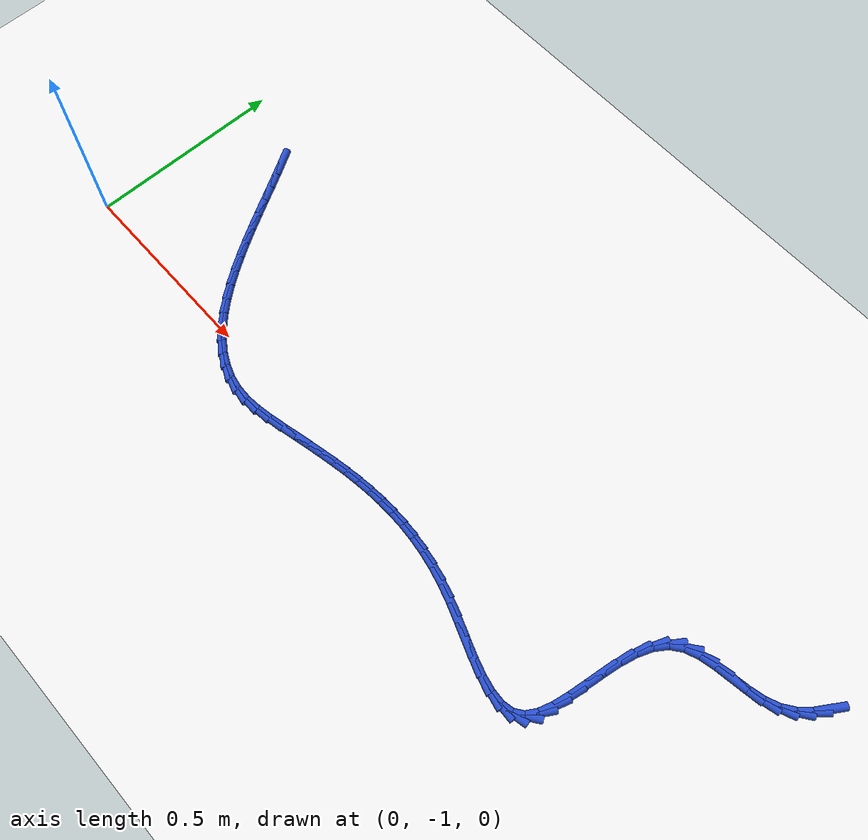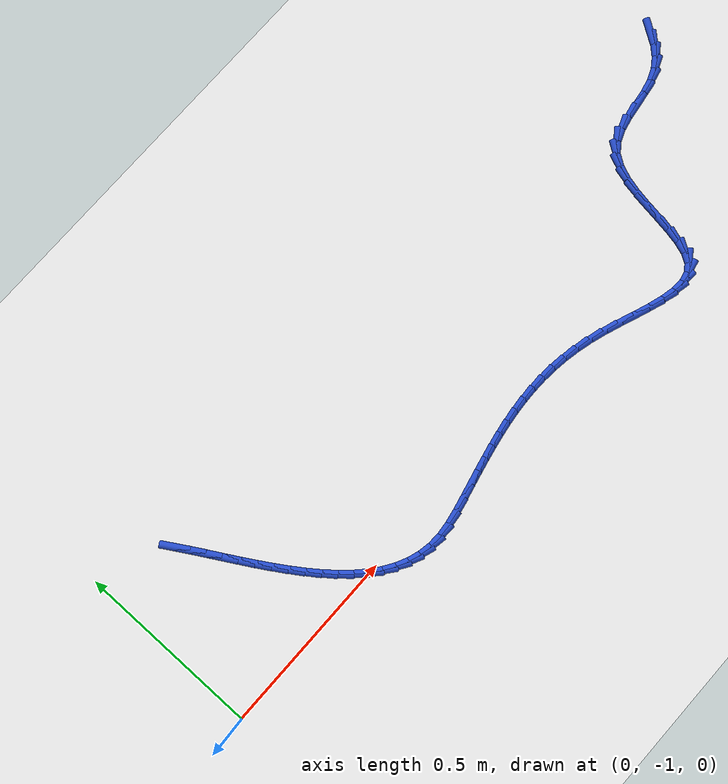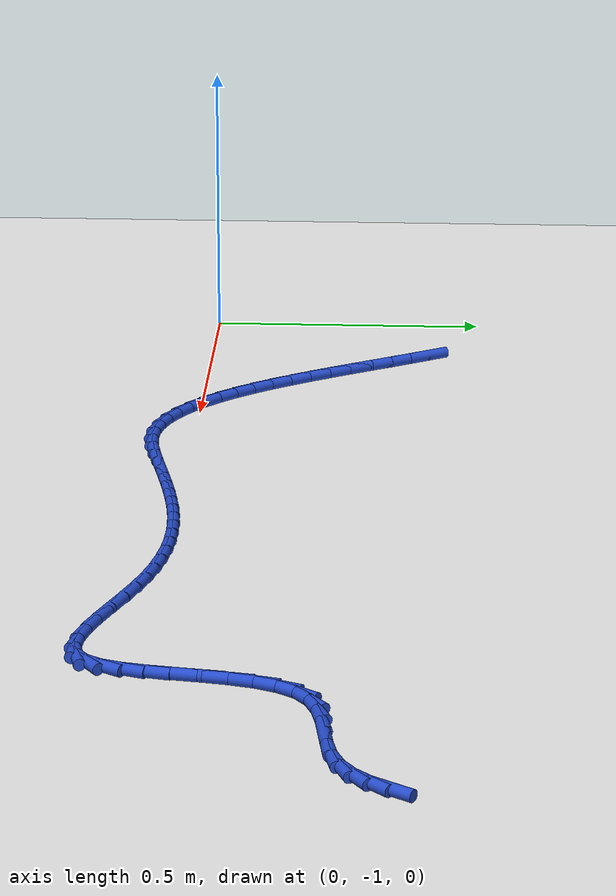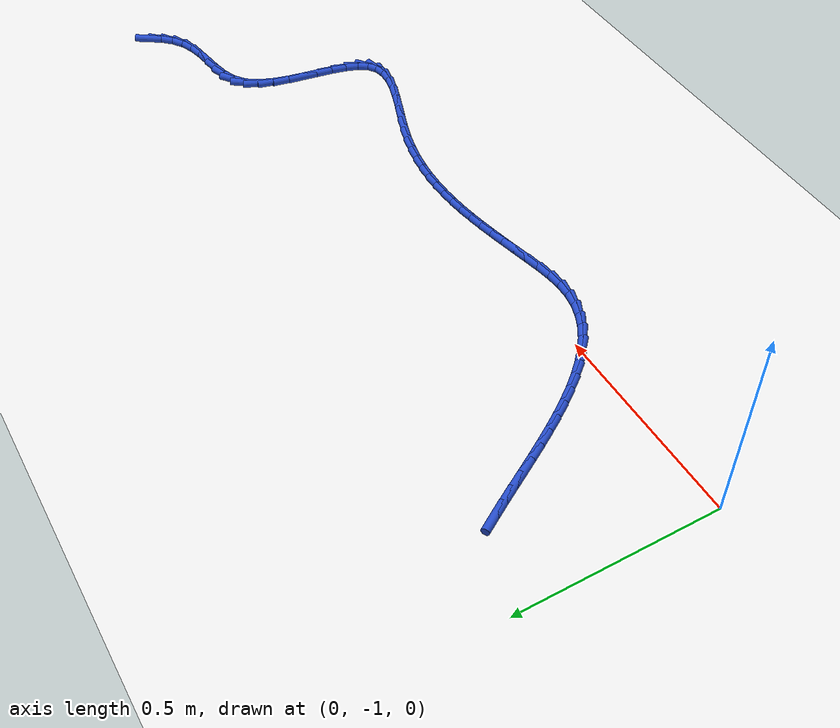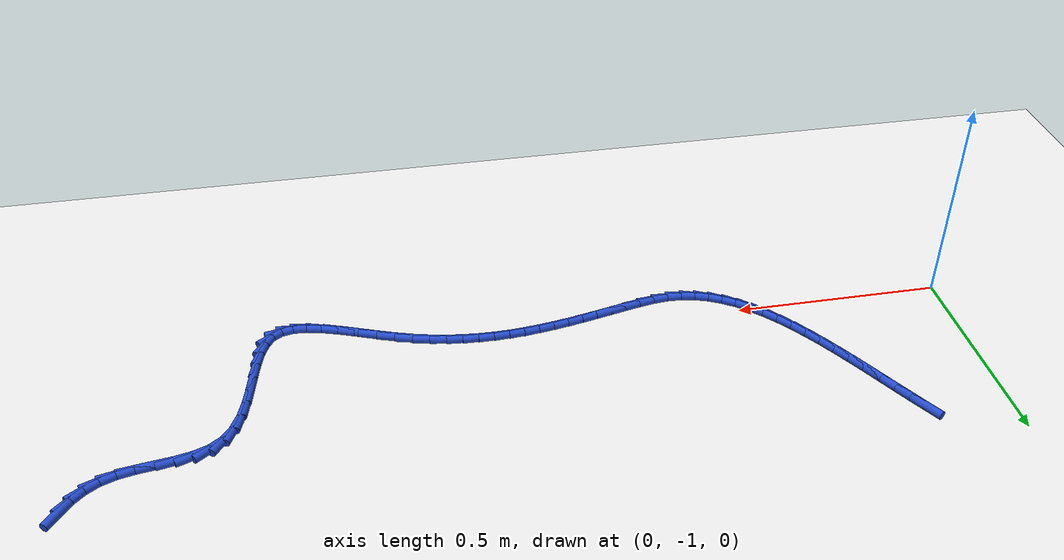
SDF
<sdf version="1.6">
 <world name="default">
  <model name="ground_plane">
   <static>1</static>
   <link name="link">
    <collision name="collision">
     <geometry><plane><normal>0 0 1</normal><size>100 100</size></plane></geometry>
     <surface><friction><ode><mu>100</mu><mu2>50</mu2></ode></friction></surface>
    </collision>
    <visual name="visual">
     <cast_shadows>0</cast_shadows>
     <geometry><plane><normal>0 0 1</normal><size>100 100</size></plane></geometry>
     <material>
      <script><uri>file://media/materials/scripts/gazebo.material</uri><name>Gazebo/WhiteGlow</name></script>
     </material>
    </visual>
   </link>
  </model>
  <model name="line">
   <link name="link_110">
    <pose>2.0328197252853224 -0.6111592553839951 0.01 0 1.57 0.9902306404199421</pose>
    <collision name="collision">
     <geometry><cylinder><radius>0.01</radius><length>0.08</length></cylinder></geometry>
    </collision>
    <visual name="visual">
     <material>
      <script><name>Gazebo/Blue</name><uri>file://media/materials/scripts/gazebo.material</uri></script>
     </material>
     <geometry><cylinder><radius>0.01</radius><length>0.08</length></cylinder></geometry>
    </visual>
   </link>
   <link name="link_111">
    <pose>2.013456926080141 -0.6406767410957672 0.01 0 1.57 0.8161547421102955</pose>
    <collision name="collision">
     <geometry><cylinder><radius>0.01</radius><length>0.08</length></cylinder></geometry>
    </collision>
    <visual name="visual">
     <material>
      <script><name>Gazebo/Blue</name><uri>file://media/materials/scripts/gazebo.material</uri></script>
     </material>
     <geometry><cylinder><radius>0.01</radius><length>0.08</length></cylinder></geometry>
    </visual>
   </link>
   <link name="link_112">
    <pose>1.9900759665988266 -0.6655420590887993 0.01 0 1.57 0.6112546225819424</pose>
    <collision name="collision">
     <geometry><cylinder><radius>0.01</radius><length>0.08</length></cylinder></geometry>
    </collision>
    <visual name="visual">
     <material>
      <script><name>Gazebo/Blue</name><uri>file://media/materials/scripts/gazebo.material</uri></script>
     </material>
     <geometry><cylinder><radius>0.01</radius><length>0.08</length></cylinder></geometry>
    </visual>
   </link>
   <link name="link_113">
    <pose>1.9622077225507595 -0.6850717898865568 0.01 0 1.57 0.3922026738756351</pose>
    <collision name="collision">
     <geometry><cylinder><radius>0.01</radius><length>0.08</length></cylinder></geometry>
    </collision>
    <visual name="visual">
     <material>
      <script><name>Gazebo/Blue</name><uri>file://media/materials/scripts/gazebo.material</uri></script>
     </material>
     <geometry><cylinder><radius>0.01</radius><length>0.08</length></cylinder></geometry>
    </visual>
   </link>
   <link name="link_114">
    <pose>1.929422585102428 -0.6986327752673888 0.01 0 1.57 0.2238521090580641</pose>
    <collision name="collision">
     <geometry><cylinder><radius>0.01</radius><length>0.08</length></cylinder></geometry>
    </collision>
    <visual name="visual">
     <material>
      <script><name>Gazebo/Blue</name><uri>file://media/materials/scripts/gazebo.material</uri></script>
     </material>
     <geometry><cylinder><radius>0.01</radius><length>0.08</length></cylinder></geometry>
    </visual>
   </link>
   <link name="link_115">
    <pose>1.8924394195858414 -0.7070526462042628 0.01 0 1.57 0.14602534372047485</pose>
    <collision name="collision">
     <geometry><cylinder><radius>0.01</radius><length>0.08</length></cylinder></geometry>
    </collision>
    <visual name="visual">
     <material>
      <script><name>Gazebo/Blue</name><uri>file://media/materials/scripts/gazebo.material</uri></script>
     </material>
     <geometry><cylinder><radius>0.01</radius><length>0.08</length></cylinder></geometry>
    </visual>
   </link>
   <link name="link_116">
    <pose>1.8532769371329352 -0.7128123583649497 0.01 0 1.57 0.14344134991112764</pose>
    <collision name="collision">
     <geometry><cylinder><radius>0.01</radius><length>0.08</length></cylinder></geometry>
    </collision>
    <visual name="visual">
     <material>
      <script><name>Gazebo/Blue</name><uri>file://media/materials/scripts/gazebo.material</uri></script>
     </material>
     <geometry><cylinder><radius>0.01</radius><length>0.08</length></cylinder></geometry>
    </visual>
   </link>
   <link name="link_117">
    <pose>1.814023784214208 -0.7184818209087009 0.01 0 1.57 0.2153462271272409</pose>
    <collision name="collision">
     <geometry><cylinder><radius>0.01</radius><length>0.08</length></cylinder></geometry>
    </collision>
    <visual name="visual">
     <material>
      <script><name>Gazebo/Blue</name><uri>file://media/materials/scripts/gazebo.material</uri></script>
     </material>
     <geometry><cylinder><radius>0.01</radius><length>0.08</length></cylinder></geometry>
    </visual>
   </link>
   <link name="link_118">
    <pose>1.7767686073001612 -0.7266309429947663 0.01 0 1.57 0.37871874551312384</pose>
    <collision name="collision">
     <geometry><cylinder><radius>0.01</radius><length>0.08</length></cylinder></geometry>
    </collision>
    <visual name="visual">
     <material>
      <script><name>Gazebo/Blue</name><uri>file://media/materials/scripts/gazebo.material</uri></script>
     </material>
     <geometry><cylinder><radius>0.01</radius><length>0.08</length></cylinder></geometry>
    </visual>
   </link>
   <link name="link_119">
    <pose>1.743600052861292 -0.7398296337823967 0.01 0 1.57 0.6557900767113067</pose>
    <collision name="collision">
     <geometry><cylinder><radius>0.01</radius><length>0.08</length></cylinder></geometry>
    </collision>
    <visual name="visual">
     <material>
      <script><name>Gazebo/Blue</name><uri>file://media/materials/scripts/gazebo.material</uri></script>
     </material>
     <geometry><cylinder><radius>0.01</radius><length>0.08</length></cylinder></geometry>
    </visual>
   </link>
   <link name="link_120">
    <pose>1.7165826333702952 -0.7606163262087268 0.01 0 1.57 0.9666829474743387</pose>
    <collision name="collision">
     <geometry><cylinder><radius>0.01</radius><length>0.08</length></cylinder></geometry>
    </collision>
    <visual name="visual">
     <material>
      <script><name>Gazebo/Blue</name><uri>file://media/materials/scripts/gazebo.material</uri></script>
     </material>
     <geometry><cylinder><radius>0.01</radius><length>0.08</length></cylinder></geometry>
    </visual>
   </link>
   <link name="link_121">
    <pose>1.6964471705883504 -0.7897900171916727 0.01 0 1.57 1.1847960602527028</pose>
    <collision name="collision">
     <geometry><cylinder><radius>0.01</radius><length>0.08</length></cylinder></geometry>
    </collision>
    <visual name="visual">
     <material>
      <script><name>Gazebo/Blue</name><uri>file://media/materials/scripts/gazebo.material</uri></script>
     </material>
     <geometry><cylinder><radius>0.01</radius><length>0.08</length></cylinder></geometry>
    </visual>
   </link>
   <link name="link_122">
    <pose>1.6819204655087676 -0.8255360047781958 0.01 0 1.57 1.31918658557293</pose>
    <collision name="collision">
     <geometry><cylinder><radius>0.01</radius><length>0.08</length></cylinder></geometry>
    </collision>
    <visual name="visual">
     <material>
      <script><name>Gazebo/Blue</name><uri>file://media/materials/scripts/gazebo.material</uri></script>
     </material>
     <geometry><cylinder><radius>0.01</radius><length>0.08</length></cylinder></geometry>
    </visual>
   </link>
   <link name="link_123">
    <pose>1.6715641109626231 -0.8658241179971582 0.01 0 1.57 1.3945054377871708</pose>
    <collision name="collision">
     <geometry><cylinder><radius>0.01</radius><length>0.08</length></cylinder></geometry>
    </collision>
    <visual name="visual">
     <material>
      <script><name>Gazebo/Blue</name><uri>file://media/materials/scripts/gazebo.material</uri></script>
     </material>
     <geometry><cylinder><radius>0.01</radius><length>0.08</length></cylinder></geometry>
    </visual>
   </link>
   <link name="link_124">
    <pose>1.6639396997809937 -0.9086241858774222 0.01 0 1.57 1.4255554097595278</pose>
    <collision name="collision">
     <geometry><cylinder><radius>0.01</radius><length>0.08</length></cylinder></geometry>
    </collision>
    <visual name="visual">
     <material>
      <script><name>Gazebo/Blue</name><uri>file://media/materials/scripts/gazebo.material</uri></script>
     </material>
     <geometry><cylinder><radius>0.01</radius><length>0.08</length></cylinder></geometry>
    </visual>
   </link>
   <link name="link_125">
    <pose>1.6576088247949554 -0.9519060374478491 0.01 0 1.57 1.4168548545623476</pose>
    <collision name="collision">
     <geometry><cylinder><radius>0.01</radius><length>0.08</length></cylinder></geometry>
    </collision>
    <visual name="visual">
     <material>
      <script><name>Gazebo/Blue</name><uri>file://media/materials/scripts/gazebo.material</uri></script>
     </material>
     <geometry><cylinder><radius>0.01</radius><length>0.08</length></cylinder></geometry>
    </visual>
   </link>
   <link name="link_126">
    <pose>1.651133078835585 -0.9936395017373029 0.01 0 1.57 1.3626373330327468</pose>
    <collision name="collision">
     <geometry><cylinder><radius>0.01</radius><length>0.08</length></cylinder></geometry>
    </collision>
    <visual name="visual">
     <material>
      <script><name>Gazebo/Blue</name><uri>file://media/materials/scripts/gazebo.material</uri></script>
     </material>
     <geometry><cylinder><radius>0.01</radius><length>0.08</length></cylinder></geometry>
    </visual>
   </link>
   <link name="link_127">
    <pose>1.6430740547339588 -1.031794407774645 0.01 0 1.57 1.2426444958682092</pose>
    <collision name="collision">
     <geometry><cylinder><radius>0.01</radius><length>0.08</length></cylinder></geometry>
    </collision>
    <visual name="visual">
     <material>
      <script><name>Gazebo/Blue</name><uri>file://media/materials/scripts/gazebo.material</uri></script>
     </material>
     <geometry><cylinder><radius>0.01</radius><length>0.08</length></cylinder></geometry>
    </visual>
   </link>
   <link name="link_128">
    <pose>1.631993345321154 -1.0643405845887375 0.01 0 1.57 1.0129551217567745</pose>
    <collision name="collision">
     <geometry><cylinder><radius>0.01</radius><length>0.08</length></cylinder></geometry>
    </collision>
    <visual name="visual">
     <material>
      <script><name>Gazebo/Blue</name><uri>file://media/materials/scripts/gazebo.material</uri></script>
     </material>
     <geometry><cylinder><radius>0.01</radius><length>0.08</length></cylinder></geometry>
    </visual>
   </link>
   <link name="link_129">
    <pose>1.616452543428246 -1.0892478612084424 0.01 0 1.57 0.623672129898998</pose>
    <collision name="collision">
     <geometry><cylinder><radius>0.01</radius><length>0.08</length></cylinder></geometry>
    </collision>
    <visual name="visual">
     <material>
      <script><name>Gazebo/Blue</name><uri>file://media/materials/scripts/gazebo.material</uri></script>
     </material>
     <geometry><cylinder><radius>0.01</radius><length>0.08</length></cylinder></geometry>
    </visual>
   </link>
   <link name="link_130">
    <pose>1.5950955213045763 -1.1046135401017252 0.01 0 1.57 0.21341877784615032</pose>
    <collision name="collision">
     <geometry><cylinder><radius>0.01</radius><length>0.08</length></cylinder></geometry>
    </collision>
    <visual name="visual">
     <material>
      <script><name>Gazebo/Blue</name><uri>file://media/materials/scripts/gazebo.material</uri></script>
     </material>
     <geometry><cylinder><radius>0.01</radius><length>0.08</length></cylinder></geometry>
    </visual>
   </link>
   <link name="link_131">
    <pose>1.5678467202689328 -1.110518877278448 0.01 0 1.57 -0.059126595104994004</pose>
    <collision name="collision">
     <geometry><cylinder><radius>0.01</radius><length>0.08</length></cylinder></geometry>
    </collision>
    <visual name="visual">
     <material>
      <script><name>Gazebo/Blue</name><uri>file://media/materials/scripts/gazebo.material</uri></script>
     </material>
     <geometry><cylinder><radius>0.01</radius><length>0.08</length></cylinder></geometry>
    </visual>
   </link>
   <link name="link_132">
    <pose>1.5356422724163707 -1.108612515894369 0.01 0 1.57 -0.21822308727132422</pose>
    <collision name="collision">
     <geometry><cylinder><radius>0.01</radius><length>0.08</length></cylinder></geometry>
    </collision>
    <visual name="visual">
     <material>
      <script><name>Gazebo/Blue</name><uri>file://media/materials/scripts/gazebo.material</uri></script>
     </material>
     <geometry><cylinder><radius>0.01</radius><length>0.08</length></cylinder></geometry>
    </visual>
   </link>
   <link name="link_133">
    <pose>1.4994458755054776 -1.1005858058963953 0.01 0 1.57 -0.3074771276855908</pose>
    <collision name="collision">
     <geometry><cylinder><radius>0.01</radius><length>0.08</length></cylinder></geometry>
    </collision>
    <visual name="visual">
     <material>
      <script><name>Gazebo/Blue</name><uri>file://media/materials/scripts/gazebo.material</uri></script>
     </material>
     <geometry><cylinder><radius>0.01</radius><length>0.08</length></cylinder></geometry>
    </visual>
   </link>
   <link name="link_134">
    <pose>1.4602212272948432 -1.0881300972314352 0.01 0 1.57 -0.3525968057603776</pose>
    <collision name="collision">
     <geometry><cylinder><radius>0.01</radius><length>0.08</length></cylinder></geometry>
    </collision>
    <visual name="visual">
     <material>
      <script><name>Gazebo/Blue</name><uri>file://media/materials/scripts/gazebo.material</uri></script>
     </material>
     <geometry><cylinder><radius>0.01</radius><length>0.08</length></cylinder></geometry>
    </visual>
   </link>
   <link name="link_135">
    <pose>1.4189320255430555 -1.0729367398463951 0.01 0 1.57 -0.3658535775791108</pose>
    <collision name="collision">
     <geometry><cylinder><radius>0.01</radius><length>0.08</length></cylinder></geometry>
    </collision>
    <visual name="visual">
     <material>
      <script><name>Gazebo/Blue</name><uri>file://media/materials/scripts/gazebo.material</uri></script>
     </material>
     <geometry><cylinder><radius>0.01</radius><length>0.08</length></cylinder></geometry>
    </visual>
   </link>
   <link name="link_136">
    <pose>1.3765419680087032 -1.0566970836881828 0.01 0 1.57 -0.35147158655675903</pose>
    <collision name="collision">
     <geometry><cylinder><radius>0.01</radius><length>0.08</length></cylinder></geometry>
    </collision>
    <visual name="visual">
     <material>
      <script><name>Gazebo/Blue</name><uri>file://media/materials/scripts/gazebo.material</uri></script>
     </material>
     <geometry><cylinder><radius>0.01</radius><length>0.08</length></cylinder></geometry>
    </visual>
   </link>
   <link name="link_137">
    <pose>1.3340147524503754 -1.041102478703706 0.01 0 1.57 -0.30894761933225523</pose>
    <collision name="collision">
     <geometry><cylinder><radius>0.01</radius><length>0.08</length></cylinder></geometry>
    </collision>
    <visual name="visual">
     <material>
      <script><name>Gazebo/Blue</name><uri>file://media/materials/scripts/gazebo.material</uri></script>
     </material>
     <geometry><cylinder><radius>0.01</radius><length>0.08</length></cylinder></geometry>
    </visual>
   </link>
   <link name="link_138">
    <pose>1.2922781857452148 -1.0277815217751511 0.01 0 1.57 -0.2513595650439096</pose>
    <collision name="collision">
     <geometry><cylinder><radius>0.01</radius><length>0.08</length></cylinder></geometry>
    </collision>
    <visual name="visual">
     <material>
      <script><name>Gazebo/Blue</name><uri>file://media/materials/scripts/gazebo.material</uri></script>
     </material>
     <geometry><cylinder><radius>0.01</radius><length>0.08</length></cylinder></geometry>
    </visual>
   </link>
   <link name="link_139">
    <pose>1.2516851649509628 -1.0173576142683802 0.01 0 1.57 -0.19254718010098795</pose>
    <collision name="collision">
     <geometry><cylinder><radius>0.01</radius><length>0.08</length></cylinder></geometry>
    </collision>
    <visual name="visual">
     <material>
      <script><name>Gazebo/Blue</name><uri>file://media/materials/scripts/gazebo.material</uri></script>
     </material>
     <geometry><cylinder><radius>0.01</radius><length>0.08</length></cylinder></geometry>
    </visual>
   </link>
   <link name="link_140">
    <pose>1.2121258119131937 -1.0096450227029978 0.01 0 1.57 -0.1339955106919583</pose>
    <collision name="collision">
     <geometry><cylinder><radius>0.01</radius><length>0.08</length></cylinder></geometry>
    </collision>
    <visual name="visual">
     <material>
      <script><name>Gazebo/Blue</name><uri>file://media/materials/scripts/gazebo.material</uri></script>
     </material>
     <geometry><cylinder><radius>0.01</radius><length>0.08</length></cylinder></geometry>
    </visual>
   </link>
   <link name="link_141">
    <pose>1.173477116002012 -1.0044350522488168 0.01 0 1.57 -0.0768678797705989</pose>
    <collision name="collision">
     <geometry><cylinder><radius>0.01</radius><length>0.08</length></cylinder></geometry>
    </collision>
    <visual name="visual">
     <material>
      <script><name>Gazebo/Blue</name><uri>file://media/materials/scripts/gazebo.material</uri></script>
     </material>
     <geometry><cylinder><radius>0.01</radius><length>0.08</length></cylinder></geometry>
    </visual>
   </link>
   <link name="link_142">
    <pose>1.1356160665875212 -1.0015190080756482 0.01 0 1.57 -0.022332115472428794</pose>
    <collision name="collision">
     <geometry><cylinder><radius>0.01</radius><length>0.08</length></cylinder></geometry>
    </collision>
    <visual name="visual">
     <material>
      <script><name>Gazebo/Blue</name><uri>file://media/materials/scripts/gazebo.material</uri></script>
     </material>
     <geometry><cylinder><radius>0.01</radius><length>0.08</length></cylinder></geometry>
    </visual>
   </link>
   <link name="link_143">
    <pose>1.0984196530398251 -1.000688195353305 0.01 0 1.57 0.02852124862827058</pose>
    <collision name="collision">
     <geometry><cylinder><radius>0.01</radius><length>0.08</length></cylinder></geometry>
    </collision>
    <visual name="visual">
     <material>
      <script><name>Gazebo/Blue</name><uri>file://media/materials/scripts/gazebo.material</uri></script>
     </material>
     <geometry><cylinder><radius>0.01</radius><length>0.08</length></cylinder></geometry>
    </visual>
   </link>
   <link name="link_144">
    <pose>1.0617648647290276 -1.001733919251599 0.01 0 1.57 0.07474603392983466</pose>
    <collision name="collision">
     <geometry><cylinder><radius>0.01</radius><length>0.08</length></cylinder></geometry>
    </collision>
    <visual name="visual">
     <material>
      <script><name>Gazebo/Blue</name><uri>file://media/materials/scripts/gazebo.material</uri></script>
     </material>
     <geometry><cylinder><radius>0.01</radius><length>0.08</length></cylinder></geometry>
    </visual>
   </link>
   <link name="link_145">
    <pose>1.0255286910252328 -1.0044474849403422 0.01 0 1.57 0.11558287646956435</pose>
    <collision name="collision">
     <geometry><cylinder><radius>0.01</radius><length>0.08</length></cylinder></geometry>
    </collision>
    <visual name="visual">
     <material>
      <script><name>Gazebo/Blue</name><uri>file://media/materials/scripts/gazebo.material</uri></script>
     </material>
     <geometry><cylinder><radius>0.01</radius><length>0.08</length></cylinder></geometry>
    </visual>
   </link>
   <link name="link_146">
    <pose>0.9895881212985429 -1.0086201975893465 0.01 0 1.57 0.1504745833168893</pose>
    <collision name="collision">
     <geometry><cylinder><radius>0.01</radius><length>0.08</length></cylinder></geometry>
    </collision>
    <visual name="visual">
     <material>
      <script><name>Gazebo/Blue</name><uri>file://media/materials/scripts/gazebo.material</uri></script>
     </material>
     <geometry><cylinder><radius>0.01</radius><length>0.08</length></cylinder></geometry>
    </visual>
   </link>
   <link name="link_147">
    <pose>0.9538201449190629 -1.0140433623684248 0.01 0 1.57 0.1790584805503404</pose>
    <collision name="collision">
     <geometry><cylinder><radius>0.01</radius><length>0.08</length></cylinder></geometry>
    </collision>
    <visual name="visual">
     <material>
      <script><name>Gazebo/Blue</name><uri>file://media/materials/scripts/gazebo.material</uri></script>
     </material>
     <geometry><cylinder><radius>0.01</radius><length>0.08</length></cylinder></geometry>
    </visual>
   </link>
   <link name="link_148">
    <pose>0.9181017512568959 -1.0205082844473883 0.01 0 1.57 0.20114359376662289</pose>
    <collision name="collision">
     <geometry><cylinder><radius>0.01</radius><length>0.08</length></cylinder></geometry>
    </collision>
    <visual name="visual">
     <material>
      <script><name>Gazebo/Blue</name><uri>file://media/materials/scripts/gazebo.material</uri></script>
     </material>
     <geometry><cylinder><radius>0.01</radius><length>0.08</length></cylinder></geometry>
    </visual>
   </link>
   <link name="link_149">
    <pose>0.882309929682146 -1.0278062689960492 0.01 0 1.57 0.21668109766972743</pose>
    <collision name="collision">
     <geometry><cylinder><radius>0.01</radius><length>0.08</length></cylinder></geometry>
    </collision>
    <visual name="visual">
     <material>
      <script><name>Gazebo/Blue</name><uri>file://media/materials/scripts/gazebo.material</uri></script>
     </material>
     <geometry><cylinder><radius>0.01</radius><length>0.08</length></cylinder></geometry>
    </visual>
   </link>
   <link name="link_150">
    <pose>0.8463216695649168 -1.03572862118422 0.01 0 1.57 0.22573488931792118</pose>
    <collision name="collision">
     <geometry><cylinder><radius>0.01</radius><length>0.08</length></cylinder></geometry>
    </collision>
    <visual name="visual">
     <material>
      <script><name>Gazebo/Blue</name><uri>file://media/materials/scripts/gazebo.material</uri></script>
     </material>
     <geometry><cylinder><radius>0.01</radius><length>0.08</length></cylinder></geometry>
    </visual>
   </link>
   <link name="link_151">
    <pose>0.8100139602753119 -1.044066646181713 0.01 0 1.57 0.22845667853539978</pose>
    <collision name="collision">
     <geometry><cylinder><radius>0.01</radius><length>0.08</length></cylinder></geometry>
    </collision>
    <visual name="visual">
     <material>
      <script><name>Gazebo/Blue</name><uri>file://media/materials/scripts/gazebo.material</uri></script>
     </material>
     <geometry><cylinder><radius>0.01</radius><length>0.08</length></cylinder></geometry>
    </visual>
   </link>
   <link name="link_152">
    <pose>0.7732637911834361 -1.0526116491583395 0.01 0 1.57 0.22095520744331978</pose>
    <collision name="collision">
     <geometry><cylinder><radius>0.01</radius><length>0.08</length></cylinder></geometry>
    </collision>
    <visual name="visual">
     <material>
      <script><name>Gazebo/Blue</name><uri>file://media/materials/scripts/gazebo.material</uri></script>
     </material>
     <geometry><cylinder><radius>0.01</radius><length>0.08</length></cylinder></geometry>
    </visual>
   </link>
   <link name="link_153">
    <pose>0.7360498581351091 -1.0609707399025632 0.01 0 1.57 0.18132951128203767</pose>
    <collision name="collision">
     <geometry><cylinder><radius>0.01</radius><length>0.08</length></cylinder></geometry>
    </collision>
    <visual name="visual">
     <material>
      <script><name>Gazebo/Blue</name><uri>file://media/materials/scripts/gazebo.material</uri></script>
     </material>
     <geometry><cylinder><radius>0.01</radius><length>0.08</length></cylinder></geometry>
    </visual>
   </link>
   <link name="link_154">
    <pose>0.6988843843538513 -1.0677847841352872 0.01 0 1.57 0.0983387197431889</pose>
    <collision name="collision">
     <geometry><cylinder><radius>0.01</radius><length>0.08</length></cylinder></geometry>
    </collision>
    <visual name="visual">
     <material>
      <script><name>Gazebo/Blue</name><uri>file://media/materials/scripts/gazebo.material</uri></script>
     </material>
     <geometry><cylinder><radius>0.01</radius><length>0.08</length></cylinder></geometry>
    </visual>
   </link>
   <link name="link_155">
    <pose>0.6624539378248911 -1.0713789007221395 0.01 0 1.57 -0.03320382352652636</pose>
    <collision name="collision">
     <geometry><cylinder><radius>0.01</radius><length>0.08</length></cylinder></geometry>
    </collision>
    <visual name="visual">
     <material>
      <script><name>Gazebo/Blue</name><uri>file://media/materials/scripts/gazebo.material</uri></script>
     </material>
     <geometry><cylinder><radius>0.01</radius><length>0.08</length></cylinder></geometry>
    </visual>
   </link>
   <link name="link_156">
    <pose>0.6273940838694818 -1.070214351517616 0.01 0 1.57 -0.18329402841155218</pose>
    <collision name="collision">
     <geometry><cylinder><radius>0.01</radius><length>0.08</length></cylinder></geometry>
    </collision>
    <visual name="visual">
     <material>
      <script><name>Gazebo/Blue</name><uri>file://media/materials/scripts/gazebo.material</uri></script>
     </material>
     <geometry><cylinder><radius>0.01</radius><length>0.08</length></cylinder></geometry>
    </visual>
   </link>
   <link name="link_157">
    <pose>0.593872596526536 -1.064000316336317 0.01 0 1.57 -0.327242091873969</pose>
    <collision name="collision">
     <geometry><cylinder><radius>0.01</radius><length>0.08</length></cylinder></geometry>
    </collision>
    <visual name="visual">
     <material>
      <script><name>Gazebo/Blue</name><uri>file://media/materials/scripts/gazebo.material</uri></script>
     </material>
     <geometry><cylinder><radius>0.01</radius><length>0.08</length></cylinder></geometry>
    </visual>
   </link>
   <link name="link_158">
    <pose>0.5618062661707699 -1.0531155193688628 0.01 0 1.57 -0.4589993229955275</pose>
    <collision name="collision">
     <geometry><cylinder><radius>0.01</radius><length>0.08</length></cylinder></geometry>
    </collision>
    <visual name="visual">
     <material>
      <script><name>Gazebo/Blue</name><uri>file://media/materials/scripts/gazebo.material</uri></script>
     </material>
     <geometry><cylinder><radius>0.01</radius><length>0.08</length></cylinder></geometry>
    </visual>
   </link>
   <link name="link_159">
    <pose>0.5311094870915656 -1.0379450767974203 0.01 0 1.57 -0.5752422155111312</pose>
    <collision name="collision">
     <geometry><cylinder><radius>0.01</radius><length>0.08</length></cylinder></geometry>
    </collision>
    <visual name="visual">
     <material>
      <script><name>Gazebo/Blue</name><uri>file://media/materials/scripts/gazebo.material</uri></script>
     </material>
     <geometry><cylinder><radius>0.01</radius><length>0.08</length></cylinder></geometry>
    </visual>
   </link>
   <link name="link_160">
    <pose>0.5016966535783033 -1.018874104804156 0.01 0 1.57 -0.6750605004574942</pose>
    <collision name="collision">
     <geometry><cylinder><radius>0.01</radius><length>0.08</length></cylinder></geometry>
    </collision>
    <visual name="visual">
     <material>
      <script><name>Gazebo/Blue</name><uri>file://media/materials/scripts/gazebo.material</uri></script>
     </material>
     <geometry><cylinder><radius>0.01</radius><length>0.08</length></cylinder></geometry>
    </visual>
   </link>
   <link name="link_161">
    <pose>0.47348215992036596 -0.996287719571237 0.01 0 1.57 -0.7591808079275801</pose>
    <collision name="collision">
     <geometry><cylinder><radius>0.01</radius><length>0.08</length></cylinder></geometry>
    </collision>
    <visual name="visual">
     <material>
      <script><name>Gazebo/Blue</name><uri>file://media/materials/scripts/gazebo.material</uri></script>
     </material>
     <geometry><cylinder><radius>0.01</radius><length>0.08</length></cylinder></geometry>
    </visual>
   </link>
   <link name="link_162">
    <pose>0.4463804004071351 -0.97057103728083 0.01 0 1.57 -0.8291433501137568</pose>
    <collision name="collision">
     <geometry><cylinder><radius>0.01</radius><length>0.08</length></cylinder></geometry>
    </collision>
    <visual name="visual">
     <material>
      <script><name>Gazebo/Blue</name><uri>file://media/materials/scripts/gazebo.material</uri></script>
     </material>
     <geometry><cylinder><radius>0.01</radius><length>0.08</length></cylinder></geometry>
    </visual>
   </link>
   <link name="link_163">
    <pose>0.42030576932799246 -0.9421091741151021 0.01 0 1.57 -0.8867177240352156</pose>
    <collision name="collision">
     <geometry><cylinder><radius>0.01</radius><length>0.08</length></cylinder></geometry>
    </collision>
    <visual name="visual">
     <material>
      <script><name>Gazebo/Blue</name><uri>file://media/materials/scripts/gazebo.material</uri></script>
     </material>
     <geometry><cylinder><radius>0.01</radius><length>0.08</length></cylinder></geometry>
    </visual>
   </link>
   <link name="link_164">
    <pose>0.3951726609723201 -0.9112872462562205 0.01 0 1.57 -0.9335781934657105</pose>
    <collision name="collision">
     <geometry><cylinder><radius>0.01</radius><length>0.08</length></cylinder></geometry>
    </collision>
    <visual name="visual">
     <material>
      <script><name>Gazebo/Blue</name><uri>file://media/materials/scripts/gazebo.material</uri></script>
     </material>
     <geometry><cylinder><radius>0.01</radius><length>0.08</length></cylinder></geometry>
    </visual>
   </link>
   <link name="link_165">
    <pose>0.3708954696294995 -0.8784903698863514 0.01 0 1.57 -0.9711595840676106</pose>
    <collision name="collision">
     <geometry><cylinder><radius>0.01</radius><length>0.08</length></cylinder></geometry>
    </collision>
    <visual name="visual">
     <material>
      <script><name>Gazebo/Blue</name><uri>file://media/materials/scripts/gazebo.material</uri></script>
     </material>
     <geometry><cylinder><radius>0.01</radius><length>0.08</length></cylinder></geometry>
    </visual>
   </link>
   <link name="link_166">
    <pose>0.3473885895889129 -0.8441036611876627 0.01 0 1.57 -1.0006133227431122</pose>
    <collision name="collision">
     <geometry><cylinder><radius>0.01</radius><length>0.08</length></cylinder></geometry>
    </collision>
    <visual name="visual">
     <material>
      <script><name>Gazebo/Blue</name><uri>file://media/materials/scripts/gazebo.material</uri></script>
     </material>
     <geometry><cylinder><radius>0.01</radius><length>0.08</length></cylinder></geometry>
    </visual>
   </link>
   <link name="link_167">
    <pose>0.32456641513994133 -0.8085122363423198 0.01 0 1.57 -1.022809161780365</pose>
    <collision name="collision">
     <geometry><cylinder><radius>0.01</radius><length>0.08</length></cylinder></geometry>
    </collision>
    <visual name="visual">
     <material>
      <script><name>Gazebo/Blue</name><uri>file://media/materials/scripts/gazebo.material</uri></script>
     </material>
     <geometry><cylinder><radius>0.01</radius><length>0.08</length></cylinder></geometry>
    </visual>
   </link>
   <link name="link_168">
    <pose>0.302343340571967 -0.7721012115324905 0.01 0 1.57 -1.0383516872232332</pose>
    <collision name="collision">
     <geometry><cylinder><radius>0.01</radius><length>0.08</length></cylinder></geometry>
    </collision>
    <visual name="visual">
     <material>
      <script><name>Gazebo/Blue</name><uri>file://media/materials/scripts/gazebo.material</uri></script>
     </material>
     <geometry><cylinder><radius>0.01</radius><length>0.08</length></cylinder></geometry>
    </visual>
   </link>
   <link name="link_169">
    <pose>0.28063376017437164 -0.7352557029403417 0.01 0 1.57 -1.047595558912938</pose>
    <collision name="collision">
     <geometry><cylinder><radius>0.01</radius><length>0.08</length></cylinder></geometry>
    </collision>
    <visual name="visual">
     <material>
      <script><name>Gazebo/Blue</name><uri>file://media/materials/scripts/gazebo.material</uri></script>
     </material>
     <geometry><cylinder><radius>0.01</radius><length>0.08</length></cylinder></geometry>
    </visual>
   </link>
   <link name="link_170">
    <pose>0.25935206823653695 -0.6983608267480399 0.01 0 1.57 -1.0506511480499117</pose>
    <collision name="collision">
     <geometry><cylinder><radius>0.01</radius><length>0.08</length></cylinder></geometry>
    </collision>
    <visual name="visual">
     <material>
      <script><name>Gazebo/Blue</name><uri>file://media/materials/scripts/gazebo.material</uri></script>
     </material>
     <geometry><cylinder><radius>0.01</radius><length>0.08</length></cylinder></geometry>
    </visual>
   </link>
   <link name="link_171">
    <pose>0.23841265904784478 -0.6618016991377522 0.01 0 1.57 -1.0473754216478055</pose>
    <collision name="collision">
     <geometry><cylinder><radius>0.01</radius><length>0.08</length></cylinder></geometry>
    </collision>
    <visual name="visual">
     <material>
      <script><name>Gazebo/Blue</name><uri>file://media/materials/scripts/gazebo.material</uri></script>
     </material>
     <geometry><cylinder><radius>0.01</radius><length>0.08</length></cylinder></geometry>
    </visual>
   </link>
   <link name="link_172">
    <pose>0.21772992689767748 -0.6259634362916464 0.01 0 1.57 -1.0380024076747179</pose>
    <collision name="collision">
     <geometry><cylinder><radius>0.01</radius><length>0.08</length></cylinder></geometry>
    </collision>
    <visual name="visual">
     <material>
      <script><name>Gazebo/Blue</name><uri>file://media/materials/scripts/gazebo.material</uri></script>
     </material>
     <geometry><cylinder><radius>0.01</radius><length>0.08</length></cylinder></geometry>
    </visual>
   </link>
   <link name="link_173">
    <pose>0.19723065956008926 -0.5911998392578451 0.01 0 1.57 -1.029847773762628</pose>
    <collision name="collision">
     <geometry><cylinder><radius>0.01</radius><length>0.08</length></cylinder></geometry>
    </collision>
    <visual name="visual">
     <material>
      <script><name>Gazebo/Blue</name><uri>file://media/materials/scripts/gazebo.material</uri></script>
     </material>
     <geometry><cylinder><radius>0.01</radius><length>0.08</length></cylinder></geometry>
    </visual>
   </link>
  </model>
 </world>
</sdf>
